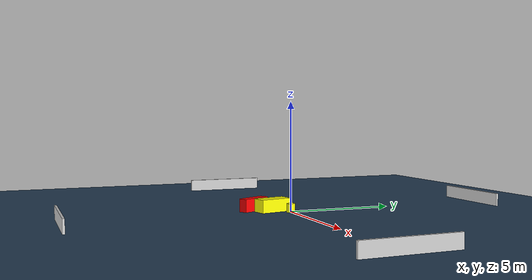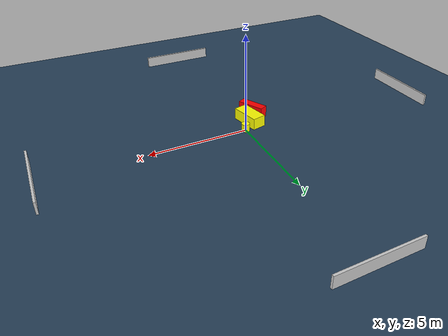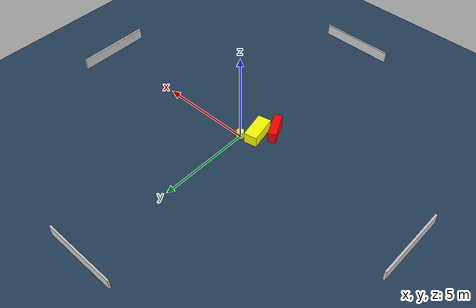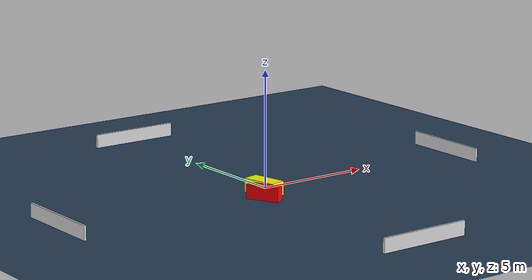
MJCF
<?xml version="1.0" ?>
<mujoco model="generated_environment">
  <option timestep="0.01" integrator="RK4" cone="elliptic"/>
  <default>
    <geom density="1"/>
  </default>
  <asset>
    <texture builtin="gradient" height="3072" name="skybox" rgb1="0.3 0.5 0.7" rgb2="0 0 0" type="skybox" width="512"/>
    <texture builtin="checker" height="300" name="groundplane" rgb1="0.2 0.3 0.4" rgb2="0.1 0.2 0.3" type="2d" width="300"/>
    <material name="groundplane" reflectance="0.2" texrepeat="5 5" texture="groundplane"/>
  </asset>
  <worldbody>
    <light dir="0 0 -1" directional="true" pos="0 0 1.5"/>
    <geom condim="3" friction="0.5 0.005 0.001" material="groundplane" name="floor" pos="0 0 0" size="0 0 0.05" type="plane"/>
    <body name="walls">
      <geom name="wall_1" condim="4" pos="-10.0 0.0 0.3" rgba="0.800000011920929 0.800000011920929 0.800000011920929 1.0" size="0.05 2.0 0.3" type="box"/>
      <geom name="wall_2" condim="4" pos="10.0 0.0 0.3" rgba="0.800000011920929 0.800000011920929 0.800000011920929 1.0" size="0.05 2.0 0.3" type="box"/>
      <geom name="wall_3" condim="4" pos="0.0 -10.0 0.3" rgba="0.800000011920929 0.800000011920929 0.800000011920929 1.0" size="2.0 0.05 0.3" type="box"/>
      <geom name="wall_4" condim="4" pos="0.0 10.0 0.3" rgba="0.800000011920929 0.800000011920929 0.800000011920929 1.0" size="2.0 0.05 0.3" type="box"/>
    </body>
    <body name="robot">
      <joint name="joint_x" type="slide" pos="0 0 0" axis="1 0 0"/>
      <joint name="joint_y" type="slide" pos="0 0 0" axis="0 1 0"/>
      <geom name="robot" type="cylinder" pos="0.0 0.0 0.2" size="0.2 0.2 0.0" mass="5.0" friction="1.0 0.005 0.0001" condim="4" rgba="1.0 1.0 0.0 1.0"/>
    </body>
    <body name="obstacle_1_movable">
      <geom name="obstacle_1_movable" condim="4" pos="-0.5697800444816994 -0.6631816553558335 0.3" euler="0 0 282.43004476177447" friction="0.0 0.005 0.001" rgba="1.0 1.0 0.0 1.0" size="0.753272252736571 0.35313498514253266 0.3" type="box" mass="0.1"/>
      <joint type="free"/>
    </body>
    <body name="obstacle_2_static">
      <geom name="obstacle_2_static" condim="4" pos="-1.1083869025859303 -1.3919985069007872 0.3" euler="0 0 26.900784607468204" friction="0.0 0.005 0.001" rgba="1.0 0.0 0.0 1.0" size="0.215612551796838 0.7165333815285628 0.3" type="box"/>
    </body>
  </worldbody>
  <actuator>
    <motor name="actuator_x" joint="joint_x" gear="1" ctrlrange="-1 1"/>
    <motor name="actuator_y" joint="joint_y" gear="1" ctrlrange="-1 1"/>
  </actuator>
</mujoco>
